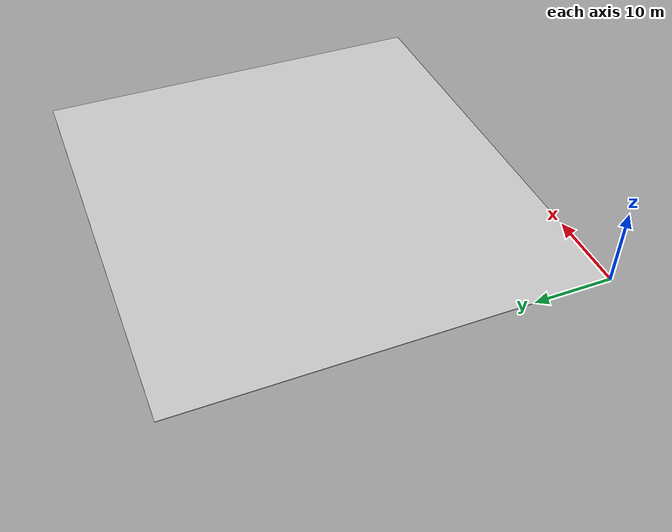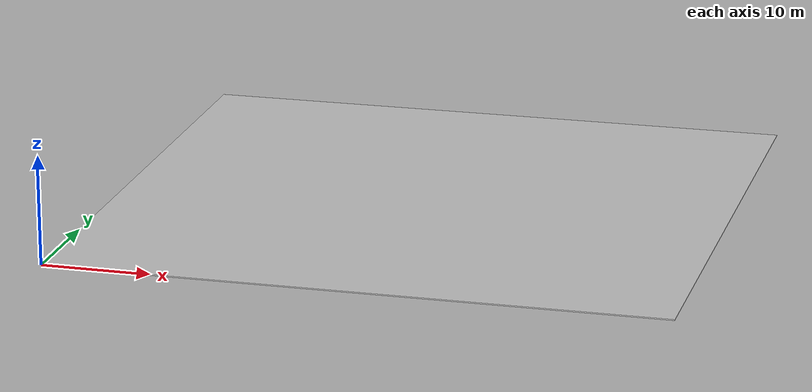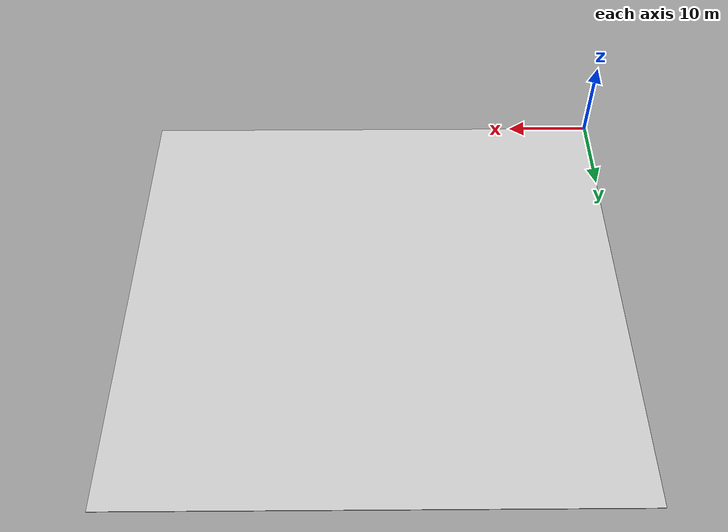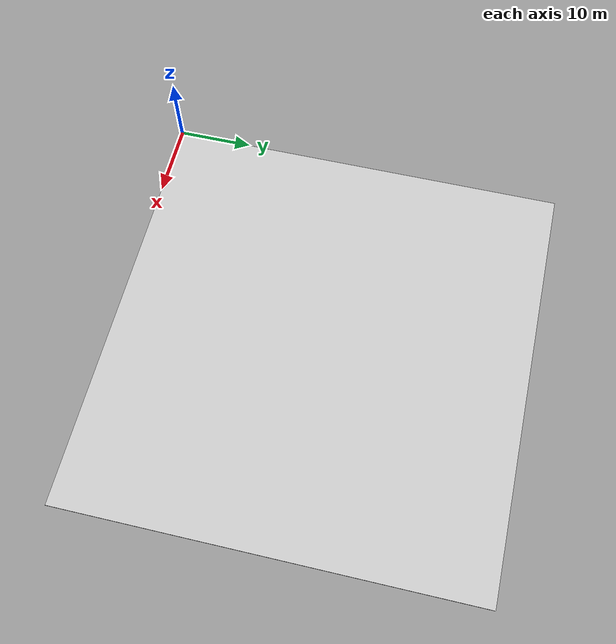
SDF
<sdf version="1.8">
 <world name="osco_scenario_world">
  <model name="osco_floor">
   <static>true</static>
   <link name="floor_link">
    <collision name="floor_collision">
     <pose>28.1250 26.8750 -0.0500 0 0 0</pose>
     <geometry><box><size>56.2500 53.7500 0.1000</size></box></geometry>
    </collision>
    <visual name="floor_visual">
     <pose>28.1250 26.8750 -0.0500 0 0 0</pose>
     <geometry><box><size>56.2500 53.7500 0.1000</size></box></geometry>
     <material><ambient>0.82 0.82 0.82 1</ambient><diffuse>0.82 0.82 0.82 1</diffuse></material>
    </visual>
   </link>
  </model>
 </world>
</sdf>
